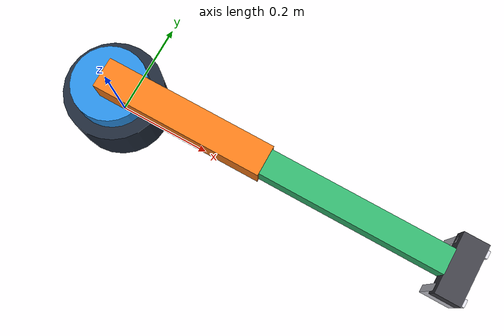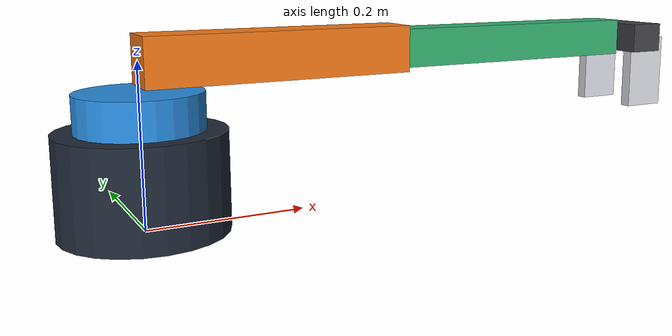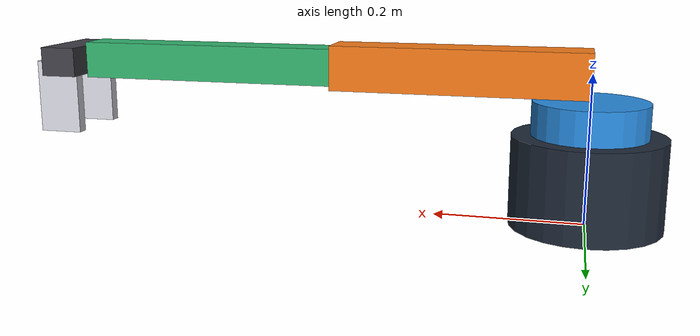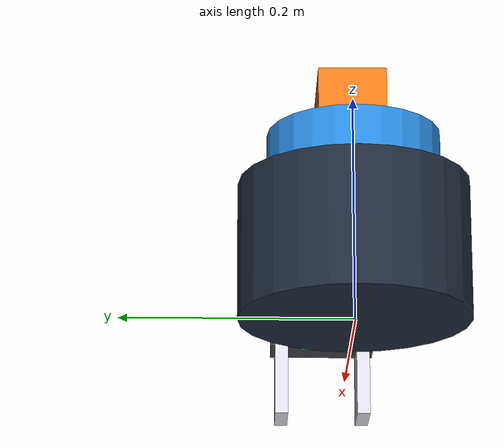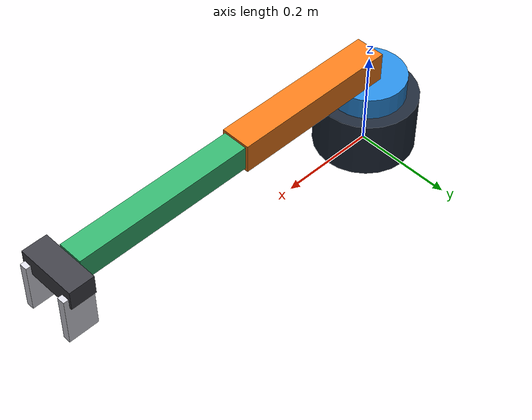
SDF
<?xml version="1.0"?>
<sdf version="1.10">
  <model name="simple_sorting_arm">
    <static>false</static>
    <self_collide>false</self_collide>

    <link name="base_link">
      <pose relative_to="__model__">0 0 0.06 0 0 0</pose>
      <inertial>
        <mass>4.0</mass>
        <inertia>
          <ixx>0.018</ixx><iyy>0.018</iyy><izz>0.032</izz>
          <ixy>0</ixy><ixz>0</ixz><iyz>0</iyz>
        </inertia>
      </inertial>
      <visual name="base_visual">
        <geometry><cylinder><radius>0.10</radius><length>0.12</length></cylinder></geometry>
        <material>
          <ambient>0.08 0.10 0.14 1</ambient>
          <diffuse>0.12 0.16 0.22 1</diffuse>
          <specular>0.25 0.25 0.25 1</specular>
        </material>
      </visual>
      <collision name="base_collision">
        <geometry><cylinder><radius>0.10</radius><length>0.12</length></cylinder></geometry>
      </collision>
    </link>

    <link name="yaw_link">
      <pose relative_to="__model__">0 0 0.14 0 0 0</pose>
      <inertial>
        <mass>0.50</mass>
        <inertia>
          <ixx>0.0007</ixx><iyy>0.0007</iyy><izz>0.0013</izz>
          <ixy>0</ixy><ixz>0</ixz><iyz>0</iyz>
        </inertia>
      </inertial>
      <visual name="yaw_visual">
        <geometry><cylinder><radius>0.075</radius><length>0.05</length></cylinder></geometry>
        <material>
          <ambient>0.12 0.45 0.72 1</ambient>
          <diffuse>0.16 0.55 0.88 1</diffuse>
        </material>
      </visual>
      <collision name="yaw_collision">
        <geometry><cylinder><radius>0.075</radius><length>0.05</length></cylinder></geometry>
      </collision>
    </link>

    <link name="upper_arm_link">
      <pose relative_to="__model__">0 0 0.20 0 0 0</pose>
      <inertial>
        <pose>0.17 0 0 0 0 0</pose>
        <mass>0.60</mass>
        <inertia>
          <ixx>0.00036</ixx><iyy>0.00596</iyy><izz>0.00596</izz>
          <ixy>0</ixy><ixz>0</ixz><iyz>0</iyz>
        </inertia>
      </inertial>
      <visual name="upper_arm_visual">
        <pose>0.17 0 0 0 0 0</pose>
        <geometry><box><size>0.34 0.06 0.06</size></box></geometry>
        <material>
          <ambient>0.86 0.39 0.09 1</ambient>
          <diffuse>0.96 0.48 0.10 1</diffuse>
        </material>
      </visual>
      <collision name="upper_arm_collision">
        <pose>0.17 0 0 0 0 0</pose>
        <geometry><box><size>0.34 0.06 0.06</size></box></geometry>
      </collision>
    </link>

    <link name="forearm_link">
      <pose relative_to="__model__">0.34 0 0.20 0 0 0</pose>
      <inertial>
        <pose>0.18 0 0 0 0 0</pose>
        <mass>0.45</mass>
        <inertia>
          <ixx>0.00019</ixx><iyy>0.00496</iyy><izz>0.00496</izz>
          <ixy>0</ixy><ixz>0</ixz><iyz>0</iyz>
        </inertia>
      </inertial>
      <visual name="forearm_visual">
        <pose>0.18 0 0 0 0 0</pose>
        <geometry><box><size>0.36 0.05 0.05</size></box></geometry>
        <material>
          <ambient>0.16 0.55 0.34 1</ambient>
          <diffuse>0.20 0.70 0.43 1</diffuse>
        </material>
      </visual>
      <collision name="forearm_collision">
        <pose>0.18 0 0 0 0 0</pose>
        <geometry><box><size>0.36 0.05 0.05</size></box></geometry>
      </collision>
    </link>

    <link name="tool_link">
      <pose relative_to="__model__">0.70 0 0.20 0 0 0</pose>
      <inertial>
        <pose>0.03 0 0 0 0 0</pose>
        <mass>0.20</mass>
        <inertia>
          <ixx>0.00027</ixx><iyy>0.00019</iyy><izz>0.00027</izz>
          <ixy>0</ixy><ixz>0</ixz><iyz>0</iyz>
        </inertia>
      </inertial>
      <visual name="tool_visual">
        <pose>0.025 0 0 0 0 0</pose>
        <geometry><box><size>0.05 0.12 0.04</size></box></geometry>
        <material>
          <ambient>0.16 0.16 0.18 1</ambient>
          <diffuse>0.25 0.25 0.28 1</diffuse>
        </material>
      </visual>
      <collision name="tool_collision">
        <pose>0.025 0 0 0 0 0</pose>
        <geometry><box><size>0.05 0.12 0.04</size></box></geometry>
      </collision>
    </link>

    <link name="left_finger_link">
      <pose relative_to="__model__">0.70 0.0475 0.20 0 0 0</pose>
      <inertial>
        <pose>0.03 0 -0.05 0 0 0</pose>
        <mass>0.05</mass>
        <inertia>
          <ixx>0.000043</ixx><iyy>0.000057</iyy><izz>0.000016</izz>
          <ixy>0</ixy><ixz>0</ixz><iyz>0</iyz>
        </inertia>
      </inertial>
      <visual name="left_finger_visual">
        <pose>0.03 0 -0.05 0 0 0</pose>
        <geometry><box><size>0.06 0.015 0.10</size></box></geometry>
        <material>
          <ambient>0.72 0.72 0.76 1</ambient>
          <diffuse>0.86 0.86 0.90 1</diffuse>
        </material>
      </visual>
      <collision name="left_finger_collision">
        <pose>0.03 0 -0.05 0 0 0</pose>
        <geometry><box><size>0.06 0.015 0.10</size></box></geometry>
      </collision>
    </link>

    <link name="right_finger_link">
      <pose relative_to="__model__">0.70 -0.0475 0.20 0 0 0</pose>
      <inertial>
        <pose>0.03 0 -0.05 0 0 0</pose>
        <mass>0.05</mass>
        <inertia>
          <ixx>0.000043</ixx><iyy>0.000057</iyy><izz>0.000016</izz>
          <ixy>0</ixy><ixz>0</ixz><iyz>0</iyz>
        </inertia>
      </inertial>
      <visual name="right_finger_visual">
        <pose>0.03 0 -0.05 0 0 0</pose>
        <geometry><box><size>0.06 0.015 0.10</size></box></geometry>
        <material>
          <ambient>0.72 0.72 0.76 1</ambient>
          <diffuse>0.86 0.86 0.90 1</diffuse>
        </material>
      </visual>
      <collision name="right_finger_collision">
        <pose>0.03 0 -0.05 0 0 0</pose>
        <geometry><box><size>0.06 0.015 0.10</size></box></geometry>
      </collision>
    </link>

    <joint name="world_fixed_joint" type="fixed">
      <parent>world</parent>
      <child>base_link</child>
    </joint>

    <joint name="base_yaw_joint" type="revolute">
      <pose relative_to="yaw_link"/>
      <parent>base_link</parent>
      <child>yaw_link</child>
      <axis>
        <xyz>0 0 1</xyz>
        <limit><lower>-2.60</lower><upper>2.60</upper><effort>40</effort><velocity>1.8</velocity></limit>
        <dynamics><damping>0.40</damping><friction>0.10</friction></dynamics>
      </axis>
    </joint>

    <joint name="shoulder_joint" type="revolute">
      <pose relative_to="upper_arm_link"/>
      <parent>yaw_link</parent>
      <child>upper_arm_link</child>
      <axis>
        <xyz>0 1 0</xyz>
        <limit><lower>-1.45</lower><upper>1.10</upper><effort>90</effort><velocity>1.6</velocity></limit>
        <dynamics><damping>0.55</damping><friction>0.12</friction></dynamics>
      </axis>
    </joint>

    <joint name="elbow_joint" type="revolute">
      <pose relative_to="forearm_link"/>
      <parent>upper_arm_link</parent>
      <child>forearm_link</child>
      <axis>
        <xyz>0 1 0</xyz>
        <limit><lower>-0.20</lower><upper>2.35</upper><effort>75</effort><velocity>1.8</velocity></limit>
        <dynamics><damping>0.45</damping><friction>0.10</friction></dynamics>
      </axis>
    </joint>

    <joint name="tool_fixed_joint" type="fixed">
      <pose relative_to="tool_link"/>
      <parent>forearm_link</parent>
      <child>tool_link</child>
    </joint>

    <joint name="left_finger_joint" type="prismatic">
      <pose relative_to="left_finger_link"/>
      <parent>tool_link</parent>
      <child>left_finger_link</child>
      <axis>
        <xyz>0 1 0</xyz>
        <limit><lower>0.0</lower><upper>0.035</upper><effort>15</effort><velocity>0.10</velocity></limit>
        <dynamics><damping>0.30</damping><friction>0.05</friction></dynamics>
      </axis>
    </joint>

    <joint name="right_finger_joint" type="prismatic">
      <pose relative_to="right_finger_link"/>
      <parent>tool_link</parent>
      <child>right_finger_link</child>
      <axis>
        <xyz>0 -1 0</xyz>
        <limit><lower>0.0</lower><upper>0.035</upper><effort>15</effort><velocity>0.10</velocity></limit>
        <dynamics><damping>0.30</damping><friction>0.05</friction></dynamics>
      </axis>
    </joint>

    <plugin filename="gz-sim-joint-position-controller-system" name="gz::sim::systems::JointPositionController">
      <joint_name>base_yaw_joint</joint_name><topic>/arm/base_yaw/cmd_pos</topic>
      <p_gain>90</p_gain><i_gain>0</i_gain><d_gain>9</d_gain>
      <cmd_min>-40</cmd_min><cmd_max>40</cmd_max>
    </plugin>
    <plugin filename="gz-sim-joint-position-controller-system" name="gz::sim::systems::JointPositionController">
      <joint_name>shoulder_joint</joint_name><topic>/arm/shoulder/cmd_pos</topic>
      <p_gain>260</p_gain><i_gain>0.2</i_gain><d_gain>26</d_gain>
      <i_min>-3</i_min><i_max>3</i_max><cmd_min>-90</cmd_min><cmd_max>90</cmd_max>
    </plugin>
    <plugin filename="gz-sim-joint-position-controller-system" name="gz::sim::systems::JointPositionController">
      <joint_name>elbow_joint</joint_name><topic>/arm/elbow/cmd_pos</topic>
      <p_gain>220</p_gain><i_gain>0.15</i_gain><d_gain>22</d_gain>
      <i_min>-3</i_min><i_max>3</i_max><cmd_min>-75</cmd_min><cmd_max>75</cmd_max>
    </plugin>
    <plugin filename="gz-sim-joint-position-controller-system" name="gz::sim::systems::JointPositionController">
      <joint_name>left_finger_joint</joint_name><topic>/arm/left_finger/cmd_pos</topic>
      <p_gain>180</p_gain><i_gain>0</i_gain><d_gain>8</d_gain>
      <cmd_min>-15</cmd_min><cmd_max>15</cmd_max>
    </plugin>
    <plugin filename="gz-sim-joint-position-controller-system" name="gz::sim::systems::JointPositionController">
      <joint_name>right_finger_joint</joint_name><topic>/arm/right_finger/cmd_pos</topic>
      <p_gain>180</p_gain><i_gain>0</i_gain><d_gain>8</d_gain>
      <cmd_min>-15</cmd_min><cmd_max>15</cmd_max>
    </plugin>

    <plugin filename="gz-sim-joint-state-publisher-system" name="gz::sim::systems::JointStatePublisher">
      <topic>/arm/joint_states</topic>
    </plugin>

    <plugin filename="gz-sim-detachable-joint-system" name="gz::sim::systems::DetachableJoint">
      <parent_link>tool_link</parent_link>
      <child_model>marker0_box</child_model>
      <child_model_link>box_link</child_model_link>
      <attach_topic>/arm/grasp/marker0/attach</attach_topic>
      <detach_topic>/arm/grasp/marker0/detach</detach_topic>
      <output_topic>/arm/grasp/marker0/state</output_topic>
    </plugin>

    <plugin filename="gz-sim-detachable-joint-system" name="gz::sim::systems::DetachableJoint">
      <parent_link>tool_link</parent_link>
      <child_model>marker1_box</child_model>
      <child_model_link>box_link</child_model_link>
      <attach_topic>/arm/grasp/marker1/attach</attach_topic>
      <detach_topic>/arm/grasp/marker1/detach</detach_topic>
      <output_topic>/arm/grasp/marker1/state</output_topic>
    </plugin>
  </model>
</sdf>
